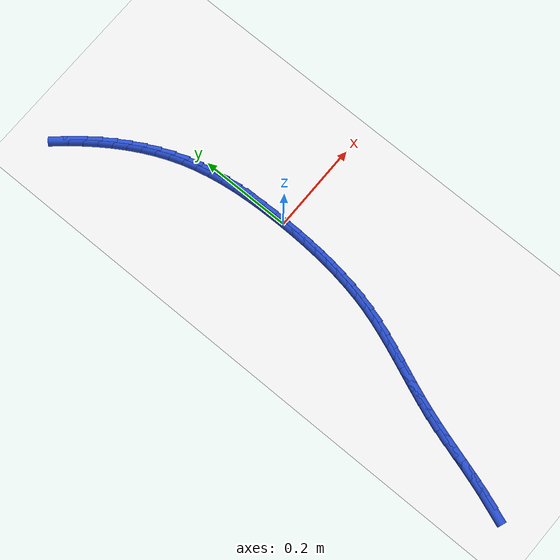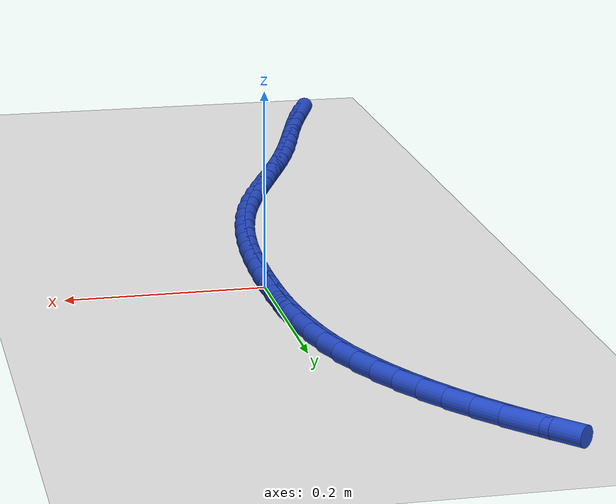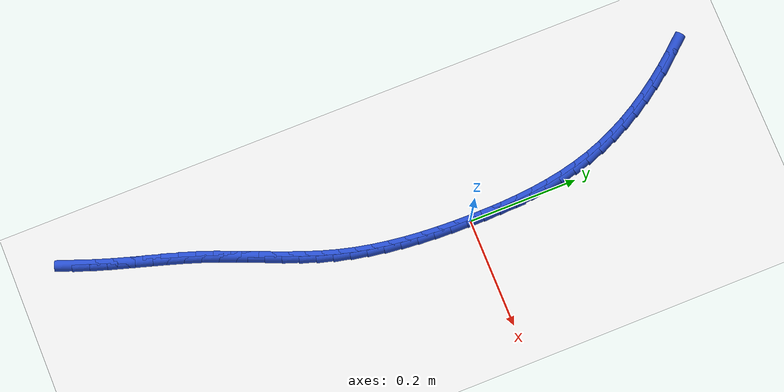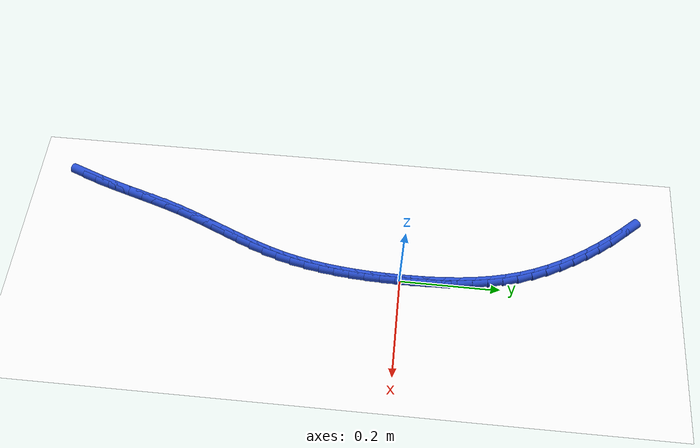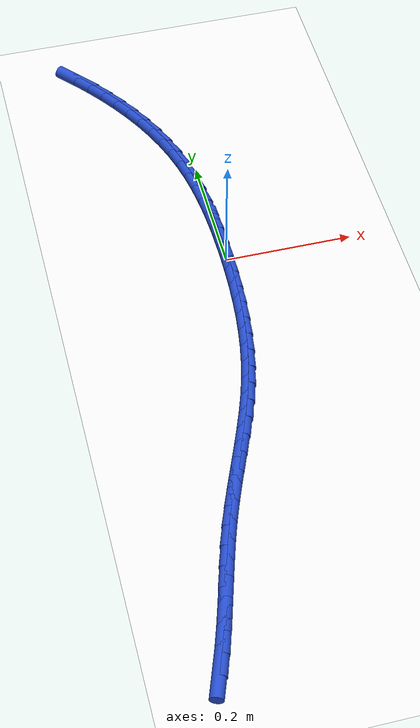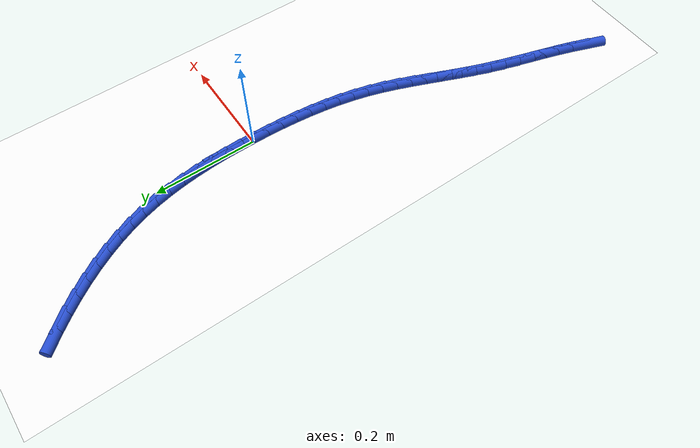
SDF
<sdf version="1.6">
 <world name="default">
  <model name="ground_plane">
   <static>1</static>
   <link name="link">
    <collision name="collision">
     <geometry><plane><normal>0 0 1</normal><size>100 100</size></plane></geometry>
     <surface><friction><ode><mu>100</mu><mu2>50</mu2></ode></friction></surface>
    </collision>
    <visual name="visual">
     <cast_shadows>0</cast_shadows>
     <geometry><plane><normal>0 0 1</normal><size>100 100</size></plane></geometry>
     <material>
      <script><uri>file://media/materials/scripts/gazebo.material</uri><name>Gazebo/WhiteGlow</name></script>
     </material>
    </visual>
   </link>
  </model>
  <model name="line">
   <link name="link_0">
    <pose>-4.7704895589362195e-18 8.326672684688674e-17 0.01 0 1.57 -1.5682312444252402</pose>
    <collision name="collision">
     <geometry><cylinder><radius>0.01</radius><length>0.08</length></cylinder></geometry>
    </collision>
    <visual name="visual">
     <material>
      <script><name>Gazebo/Blue</name><uri>file://media/materials/scripts/gazebo.material</uri></script>
     </material>
     <geometry><cylinder><radius>0.01</radius><length>0.08</length></cylinder></geometry>
    </visual>
   </link>
   <link name="link_1">
    <pose>-7.850983834851156e-05 0.030607074099505506 0.01 0 1.57 -1.5445897610422592</pose>
    <collision name="collision">
     <geometry><cylinder><radius>0.01</radius><length>0.08</length></cylinder></geometry>
    </collision>
    <visual name="visual">
     <material>
      <script><name>Gazebo/Blue</name><uri>file://media/materials/scripts/gazebo.material</uri></script>
     </material>
     <geometry><cylinder><radius>0.01</radius><length>0.08</length></cylinder></geometry>
    </visual>
   </link>
   <link name="link_2">
    <pose>-0.0008796718463034315 0.06117111666339974 0.01 0 1.57 -1.5160301594730798</pose>
    <collision name="collision">
     <geometry><cylinder><radius>0.01</radius><length>0.08</length></cylinder></geometry>
    </collision>
    <visual name="visual">
     <material>
      <script><name>Gazebo/Blue</name><uri>file://media/materials/scripts/gazebo.material</uri></script>
     </material>
     <geometry><cylinder><radius>0.01</radius><length>0.08</length></cylinder></geometry>
    </visual>
   </link>
   <link name="link_3">
    <pose>-0.002548365899162327 0.09161008067350809 0.01 0 1.57 -1.48234289069405</pose>
    <collision name="collision">
     <geometry><cylinder><radius>0.01</radius><length>0.08</length></cylinder></geometry>
    </collision>
    <visual name="visual">
     <material>
      <script><name>Gazebo/Blue</name><uri>file://media/materials/scripts/gazebo.material</uri></script>
     </material>
     <geometry><cylinder><radius>0.01</radius><length>0.08</length></cylinder></geometry>
    </visual>
   </link>
   <link name="link_4">
    <pose>-0.005229471872222764 0.12184191911165575 0.01 0 1.57 -1.4433000936454674</pose>
    <collision name="collision">
     <geometry><cylinder><radius>0.01</radius><length>0.08</length></cylinder></geometry>
    </collision>
    <visual name="visual">
     <material>
      <script><name>Gazebo/Blue</name><uri>file://media/materials/scripts/gazebo.material</uri></script>
     </material>
     <geometry><cylinder><radius>0.01</radius><length>0.08</length></cylinder></geometry>
    </visual>
   </link>
   <link name="link_5">
    <pose>-0.009067869640782307 0.151784584959668 0.01 0 1.57 -1.3986807048463175</pose>
    <collision name="collision">
     <geometry><cylinder><radius>0.01</radius><length>0.08</length></cylinder></geometry>
    </collision>
    <visual name="visual">
     <material>
      <script><name>Gazebo/Blue</name><uri>file://media/materials/scripts/gazebo.material</uri></script>
     </material>
     <geometry><cylinder><radius>0.01</radius><length>0.08</length></cylinder></geometry>
    </visual>
   </link>
   <link name="link_6">
    <pose>-0.01420843908013852 0.18135603119937016 0.01 0 1.57 -1.3483044304760463</pose>
    <collision name="collision">
     <geometry><cylinder><radius>0.01</radius><length>0.08</length></cylinder></geometry>
    </collision>
    <visual name="visual">
     <material>
      <script><name>Gazebo/Blue</name><uri>file://media/materials/scripts/gazebo.material</uri></script>
     </material>
     <geometry><cylinder><radius>0.01</radius><length>0.08</length></cylinder></geometry>
    </visual>
   </link>
   <link name="link_7">
    <pose>-0.020796060065588963 0.21047421081258744 0.01 0 1.57 -1.2920756030313647</pose>
    <collision name="collision">
     <geometry><cylinder><radius>0.01</radius><length>0.08</length></cylinder></geometry>
    </collision>
    <visual name="visual">
     <material>
      <script><name>Gazebo/Blue</name><uri>file://media/materials/scripts/gazebo.material</uri></script>
     </material>
     <geometry><cylinder><radius>0.01</radius><length>0.08</length></cylinder></geometry>
    </visual>
   </link>
   <link name="link_8">
    <pose>-0.028975612472431207 0.23905707678114507 0.01 0 1.57 -1.2314656069206433</pose>
    <collision name="collision">
     <geometry><cylinder><radius>0.01</radius><length>0.08</length></cylinder></geometry>
    </collision>
    <visual name="visual">
     <material>
      <script><name>Gazebo/Blue</name><uri>file://media/materials/scripts/gazebo.material</uri></script>
     </material>
     <geometry><cylinder><radius>0.01</radius><length>0.08</length></cylinder></geometry>
    </visual>
   </link>
   <link name="link_9">
    <pose>-0.03885210006781969 0.2670370610846994 0.01 0 1.57 -1.1725634312426072</pose>
    <collision name="collision">
     <geometry><cylinder><radius>0.01</radius><length>0.08</length></cylinder></geometry>
    </collision>
    <visual name="visual">
     <material>
      <script><name>Gazebo/Blue</name><uri>file://media/materials/scripts/gazebo.material</uri></script>
     </material>
     <geometry><cylinder><radius>0.01</radius><length>0.08</length></cylinder></geometry>
    </visual>
   </link>
   <link name="link_10">
    <pose>-0.050366586759226124 0.29440612219591944 0.01 0 1.57 -1.1170991158874501</pose>
    <collision name="collision">
     <geometry><cylinder><radius>0.01</radius><length>0.08</length></cylinder></geometry>
    </collision>
    <visual name="visual">
     <material>
      <script><name>Gazebo/Blue</name><uri>file://media/materials/scripts/gazebo.material</uri></script>
     </material>
     <geometry><cylinder><radius>0.01</radius><length>0.08</length></cylinder></geometry>
    </visual>
   </link>
   <link name="link_11">
    <pose>-0.06341801197118578 0.32117151396923244 0.01 0 1.57 -1.0651887856976803</pose>
    <collision name="collision">
     <geometry><cylinder><radius>0.01</radius><length>0.08</length></cylinder></geometry>
    </collision>
    <visual name="visual">
     <material>
      <script><name>Gazebo/Blue</name><uri>file://media/materials/scripts/gazebo.material</uri></script>
     </material>
     <geometry><cylinder><radius>0.01</radius><length>0.08</length></cylinder></geometry>
    </visual>
   </link>
   <link name="link_12">
    <pose>-0.07790531509691316 0.3473404902704379 0.01 0 1.57 -1.0168564107348212</pose>
    <collision name="collision">
     <geometry><cylinder><radius>0.01</radius><length>0.08</length></cylinder></geometry>
    </collision>
    <visual name="visual">
     <material>
      <script><name>Gazebo/Blue</name><uri>file://media/materials/scripts/gazebo.material</uri></script>
     </material>
     <geometry><cylinder><radius>0.01</radius><length>0.08</length></cylinder></geometry>
    </visual>
   </link>
   <link name="link_13">
    <pose>-0.09372743552962286 0.37292030496533546 0.01 0 1.57 -0.9720539099214611</pose>
    <collision name="collision">
     <geometry><cylinder><radius>0.01</radius><length>0.08</length></cylinder></geometry>
    </collision>
    <visual name="visual">
     <material>
      <script><name>Gazebo/Blue</name><uri>file://media/materials/scripts/gazebo.material</uri></script>
     </material>
     <geometry><cylinder><radius>0.01</radius><length>0.08</length></cylinder></geometry>
    </visual>
   </link>
   <link name="link_14">
    <pose>-0.11078331266252939 0.39791821191972493 0.01 0 1.57 -0.9306806682658132</pose>
    <collision name="collision">
     <geometry><cylinder><radius>0.01</radius><length>0.08</length></cylinder></geometry>
    </collision>
    <visual name="visual">
     <material>
      <script><name>Gazebo/Blue</name><uri>file://media/materials/scripts/gazebo.material</uri></script>
     </material>
     <geometry><cylinder><radius>0.01</radius><length>0.08</length></cylinder></geometry>
    </visual>
   </link>
   <link name="link_15">
    <pose>-0.12897188588884728 0.4223414649994055 0.01 0 1.57 -0.8926009176055771</pose>
    <collision name="collision">
     <geometry><cylinder><radius>0.01</radius><length>0.08</length></cylinder></geometry>
    </collision>
    <visual name="visual">
     <material>
      <script><name>Gazebo/Blue</name><uri>file://media/materials/scripts/gazebo.material</uri></script>
     </material>
     <geometry><cylinder><radius>0.01</radius><length>0.08</length></cylinder></geometry>
    </visual>
   </link>
   <link name="link_16">
    <pose>-0.14819209460179109 0.4461973180701771 0.01 0 1.57 -0.8576582614860583</pose>
    <collision name="collision">
     <geometry><cylinder><radius>0.01</radius><length>0.08</length></cylinder></geometry>
    </collision>
    <visual name="visual">
     <material>
      <script><name>Gazebo/Blue</name><uri>file://media/materials/scripts/gazebo.material</uri></script>
     </material>
     <geometry><cylinder><radius>0.01</radius><length>0.08</length></cylinder></geometry>
    </visual>
   </link>
   <link name="link_237">
    <pose>-0.1810637323218418 -0.6708907422479433 0.01 0 1.57 1.2195238673102895</pose>
    <collision name="collision">
     <geometry><cylinder><radius>0.01</radius><length>0.08</length></cylinder></geometry>
    </collision>
    <visual name="visual">
     <material>
      <script><name>Gazebo/Blue</name><uri>file://media/materials/scripts/gazebo.material</uri></script>
     </material>
     <geometry><cylinder><radius>0.01</radius><length>0.08</length></cylinder></geometry>
    </visual>
   </link>
   <link name="link_238">
    <pose>-0.1705375481882113 -0.6421676533683622 0.01 0 1.57 1.2501282678615098</pose>
    <collision name="collision">
     <geometry><cylinder><radius>0.01</radius><length>0.08</length></cylinder></geometry>
    </collision>
    <visual name="visual">
     <material>
      <script><name>Gazebo/Blue</name><uri>file://media/materials/scripts/gazebo.material</uri></script>
     </material>
     <geometry><cylinder><radius>0.01</radius><length>0.08</length></cylinder></geometry>
    </visual>
   </link>
   <link name="link_239">
    <pose>-0.16079890200146496 -0.6128459508967954 0.01 0 1.57 1.2698704078012704</pose>
    <collision name="collision">
     <geometry><cylinder><radius>0.01</radius><length>0.08</length></cylinder></geometry>
    </collision>
    <visual name="visual">
     <material>
      <script><name>Gazebo/Blue</name><uri>file://media/materials/scripts/gazebo.material</uri></script>
     </material>
     <geometry><cylinder><radius>0.01</radius><length>0.08</length></cylinder></geometry>
    </visual>
   </link>
   <link name="link_240">
    <pose>-0.15157457721179232 -0.5831237234379609 0.01 0 1.57 1.2791610879274558</pose>
    <collision name="collision">
     <geometry><cylinder><radius>0.01</radius><length>0.08</length></cylinder></geometry>
    </collision>
    <visual name="visual">
     <material>
      <script><name>Gazebo/Blue</name><uri>file://media/materials/scripts/gazebo.material</uri></script>
     </material>
     <geometry><cylinder><radius>0.01</radius><length>0.08</length></cylinder></geometry>
    </visual>
   </link>
   <link name="link_241">
    <pose>-0.14259135726938305 -0.5531990595965762 0.01 0 1.57 1.2782171268411697</pose>
    <collision name="collision">
     <geometry><cylinder><radius>0.01</radius><length>0.08</length></cylinder></geometry>
    </collision>
    <visual name="visual">
     <material>
      <script><name>Gazebo/Blue</name><uri>file://media/materials/scripts/gazebo.material</uri></script>
     </material>
     <geometry><cylinder><radius>0.01</radius><length>0.08</length></cylinder></geometry>
    </visual>
   </link>
   <link name="link_242">
    <pose>-0.13357602562442675 -0.5232700479773595 0.01 0 1.57 1.267041947652162</pose>
    <collision name="collision">
     <geometry><cylinder><radius>0.01</radius><length>0.08</length></cylinder></geometry>
    </collision>
    <visual name="visual">
     <material>
      <script><name>Gazebo/Blue</name><uri>file://media/materials/scripts/gazebo.material</uri></script>
     </material>
     <geometry><cylinder><radius>0.01</radius><length>0.08</length></cylinder></geometry>
    </visual>
   </link>
   <link name="link_243">
    <pose>-0.12425536572711281 -0.4935347771850278 0.01 0 1.57 1.2454292006266392</pose>
    <collision name="collision">
     <geometry><cylinder><radius>0.01</radius><length>0.08</length></cylinder></geometry>
    </collision>
    <visual name="visual">
     <material>
      <script><name>Gazebo/Blue</name><uri>file://media/materials/scripts/gazebo.material</uri></script>
     </material>
     <geometry><cylinder><radius>0.01</radius><length>0.08</length></cylinder></geometry>
    </visual>
   </link>
   <link name="link_244">
    <pose>-0.1143561615901007 -0.46419133548913055 0.01 0 1.57 1.2166121794686362</pose>
    <collision name="collision">
     <geometry><cylinder><radius>0.01</radius><length>0.08</length></cylinder></geometry>
    </collision>
    <visual name="visual">
     <material>
      <script><name>Gazebo/Blue</name><uri>file://media/materials/scripts/gazebo.material</uri></script>
     </material>
     <geometry><cylinder><radius>0.01</radius><length>0.08</length></cylinder></geometry>
    </visual>
   </link>
   <link name="link_245">
    <pose>-0.10370234973887746 -0.4353799191947178 0.01 0 1.57 1.194149122495107</pose>
    <collision name="collision">
     <geometry><cylinder><radius>0.01</radius><length>0.08</length></cylinder></geometry>
    </collision>
    <visual name="visual">
     <material>
      <script><name>Gazebo/Blue</name><uri>file://media/materials/scripts/gazebo.material</uri></script>
     </material>
     <geometry><cylinder><radius>0.01</radius><length>0.08</length></cylinder></geometry>
    </visual>
   </link>
   <link name="link_246">
    <pose>-0.09248574227855522 -0.40702151216060317 0.01 0 1.57 1.181526508756588</pose>
    <collision name="collision">
     <geometry><cylinder><radius>0.01</radius><length>0.08</length></cylinder></geometry>
    </collision>
    <visual name="visual">
     <material>
      <script><name>Gazebo/Blue</name><uri>file://media/materials/scripts/gazebo.material</uri></script>
     </material>
     <geometry><cylinder><radius>0.01</radius><length>0.08</length></cylinder></geometry>
    </visual>
   </link>
   <link name="link_247">
    <pose>-0.08098521035808005 -0.3789852208527426 0.01 0 1.57 1.17896260261034</pose>
    <collision name="collision">
     <geometry><cylinder><radius>0.01</radius><length>0.08</length></cylinder></geometry>
    </collision>
    <visual name="visual">
     <material>
      <script><name>Gazebo/Blue</name><uri>file://media/materials/scripts/gazebo.material</uri></script>
     </material>
     <geometry><cylinder><radius>0.01</radius><length>0.08</length></cylinder></geometry>
    </visual>
   </link>
   <link name="link_248">
    <pose>-0.0694796251263982 -0.3511401517370922 0.01 0 1.57 1.1866381526407535</pose>
    <collision name="collision">
     <geometry><cylinder><radius>0.01</radius><length>0.08</length></cylinder></geometry>
    </collision>
    <visual name="visual">
     <material>
      <script><name>Gazebo/Blue</name><uri>file://media/materials/scripts/gazebo.material</uri></script>
     </material>
     <geometry><cylinder><radius>0.01</radius><length>0.08</length></cylinder></geometry>
    </visual>
   </link>
   <link name="link_249">
    <pose>-0.05824785773245585 -0.32335541127960854 0.01 0 1.57 1.2047018953751965</pose>
    <collision name="collision">
     <geometry><cylinder><radius>0.01</radius><length>0.08</length></cylinder></geometry>
    </collision>
    <visual name="visual">
     <material>
      <script><name>Gazebo/Blue</name><uri>file://media/materials/scripts/gazebo.material</uri></script>
     </material>
     <geometry><cylinder><radius>0.01</radius><length>0.08</length></cylinder></geometry>
    </visual>
   </link>
   <link name="link_250">
    <pose>-0.04756877932519932 -0.2955001059462478 0.01 0 1.57 1.2332437939346224</pose>
    <collision name="collision">
     <geometry><cylinder><radius>0.01</radius><length>0.08</length></cylinder></geometry>
    </collision>
    <visual name="visual">
     <material>
      <script><name>Gazebo/Blue</name><uri>file://media/materials/scripts/gazebo.material</uri></script>
     </material>
     <geometry><cylinder><radius>0.01</radius><length>0.08</length></cylinder></geometry>
    </visual>
   </link>
   <link name="link_251">
    <pose>-0.03772126105357484 -0.26744334220296645 0.01 0 1.57 1.2722338596400393</pose>
    <collision name="collision">
     <geometry><cylinder><radius>0.01</radius><length>0.08</length></cylinder></geometry>
    </collision>
    <visual name="visual">
     <material>
      <script><name>Gazebo/Blue</name><uri>file://media/materials/scripts/gazebo.material</uri></script>
     </material>
     <geometry><cylinder><radius>0.01</radius><length>0.08</length></cylinder></geometry>
    </visual>
   </link>
   <link name="link_252">
    <pose>-0.028984174018150705 -0.23905422653911593 0.01 0 1.57 1.3190489900931677</pose>
    <collision name="collision">
     <geometry><cylinder><radius>0.01</radius><length>0.08</length></cylinder></geometry>
    </collision>
    <visual name="visual">
     <material>
      <script><name>Gazebo/Blue</name><uri>file://media/materials/scripts/gazebo.material</uri></script>
     </material>
     <geometry><cylinder><radius>0.01</radius><length>0.08</length></cylinder></geometry>
    </visual>
   </link>
   <link name="link_253">
    <pose>-0.021571324077423033 -0.21023333154240098 0.01 0 1.57 1.3641382880297686</pose>
    <collision name="collision">
     <geometry><cylinder><radius>0.01</radius><length>0.08</length></cylinder></geometry>
    </collision>
    <visual name="visual">
     <material>
      <script><name>Gazebo/Blue</name><uri>file://media/materials/scripts/gazebo.material</uri></script>
     </material>
     <geometry><cylinder><radius>0.01</radius><length>0.08</length></cylinder></geometry>
    </visual>
   </link>
   <link name="link_254">
    <pose>-0.015443296494355354 -0.1810036894104417 0.01 0 1.57 1.4052108148291527</pose>
    <collision name="collision">
     <geometry><cylinder><radius>0.01</radius><length>0.08</length></cylinder></geometry>
    </collision>
    <visual name="visual">
     <material>
      <script><name>Gazebo/Blue</name><uri>file://media/materials/scripts/gazebo.material</uri></script>
     </material>
     <geometry><cylinder><radius>0.01</radius><length>0.08</length></cylinder></geometry>
    </visual>
   </link>
   <link name="link_255">
    <pose>-0.010499084117040368 -0.15141811895076385 0.01 0 1.57 1.442315121460859</pose>
    <collision name="collision">
     <geometry><cylinder><radius>0.01</radius><length>0.08</length></cylinder></geometry>
    </collision>
    <visual name="visual">
     <material>
      <script><name>Gazebo/Blue</name><uri>file://media/materials/scripts/gazebo.material</uri></script>
     </material>
     <geometry><cylinder><radius>0.01</radius><length>0.08</length></cylinder></geometry>
    </visual>
   </link>
   <link name="link_256">
    <pose>-0.006637679793570762 -0.12152943897089317 0.01 0 1.57 1.4755412898456524</pose>
    <collision name="collision">
     <geometry><cylinder><radius>0.01</radius><length>0.08</length></cylinder></geometry>
    </collision>
    <visual name="visual">
     <material>
      <script><name>Gazebo/Blue</name><uri>file://media/materials/scripts/gazebo.material</uri></script>
     </material>
     <geometry><cylinder><radius>0.01</radius><length>0.08</length></cylinder></geometry>
    </visual>
   </link>
   <link name="link_257">
    <pose>-0.003758076372039232 -0.09139046827835569 0.01 0 1.57 1.5050033538786596</pose>
    <collision name="collision">
     <geometry><cylinder><radius>0.01</radius><length>0.08</length></cylinder></geometry>
    </collision>
    <visual name="visual">
     <material>
      <script><name>Gazebo/Blue</name><uri>file://media/materials/scripts/gazebo.material</uri></script>
     </material>
     <geometry><cylinder><radius>0.01</radius><length>0.08</length></cylinder></geometry>
    </visual>
   </link>
   <link name="link_258">
    <pose>-0.001759266700538468 -0.06105402568067708 0.01 0 1.57 1.5308248704436735</pose>
    <collision name="collision">
     <geometry><cylinder><radius>0.01</radius><length>0.08</length></cylinder></geometry>
    </collision>
    <visual name="visual">
     <material>
      <script><name>Gazebo/Blue</name><uri>file://media/materials/scripts/gazebo.material</uri></script>
     </material>
     <geometry><cylinder><radius>0.01</radius><length>0.08</length></cylinder></geometry>
    </visual>
   </link>
   <link name="link_259">
    <pose>-0.0005402436271611643 -0.030572929985383277 0.01 0 1.57 1.553127513003076</pose>
    <collision name="collision">
     <geometry><cylinder><radius>0.01</radius><length>0.08</length></cylinder></geometry>
    </collision>
    <visual name="visual">
     <material>
      <script><name>Gazebo/Blue</name><uri>file://media/materials/scripts/gazebo.material</uri></script>
     </material>
     <geometry><cylinder><radius>0.01</radius><length>0.08</length></cylinder></geometry>
    </visual>
   </link>
   <link name="link_260">
    <pose>-1.2576745200831851e-17 -6.938893903907228e-17 0.01 0 1.57 -1.5695703789574496</pose>
    <collision name="collision">
     <geometry><cylinder><radius>0.01</radius><length>0.08</length></cylinder></geometry>
    </collision>
    <visual name="visual">
     <material>
      <script><name>Gazebo/Blue</name><uri>file://media/materials/scripts/gazebo.material</uri></script>
     </material>
     <geometry><cylinder><radius>0.01</radius><length>0.08</length></cylinder></geometry>
    </visual>
   </link>
   <link name="link_261">
    <pose>-3.752866714770448e-05 0.030611945467946725 0.01 0 1.57 -1.5539899016055505</pose>
    <collision name="collision">
     <geometry><cylinder><radius>0.01</radius><length>0.08</length></cylinder></geometry>
    </collision>
    <visual name="visual">
     <material>
      <script><name>Gazebo/Blue</name><uri>file://media/materials/scripts/gazebo.material</uri></script>
     </material>
     <geometry><cylinder><radius>0.01</radius><length>0.08</length></cylinder></geometry>
    </visual>
   </link>
   <link name="link_262">
    <pose>-0.000551822476696931 0.06121008761093124 0.01 0 1.57 -1.561781349863519</pose>
    <collision name="collision">
     <geometry><cylinder><radius>0.01</radius><length>0.08</length></cylinder></geometry>
    </collision>
    <visual name="visual">
     <material>
      <script><name>Gazebo/Blue</name><uri>file://media/materials/scripts/gazebo.material</uri></script>
     </material>
     <geometry><cylinder><radius>0.01</radius><length>0.08</length></cylinder></geometry>
    </visual>
   </link>
  </model>
 </world>
</sdf>
